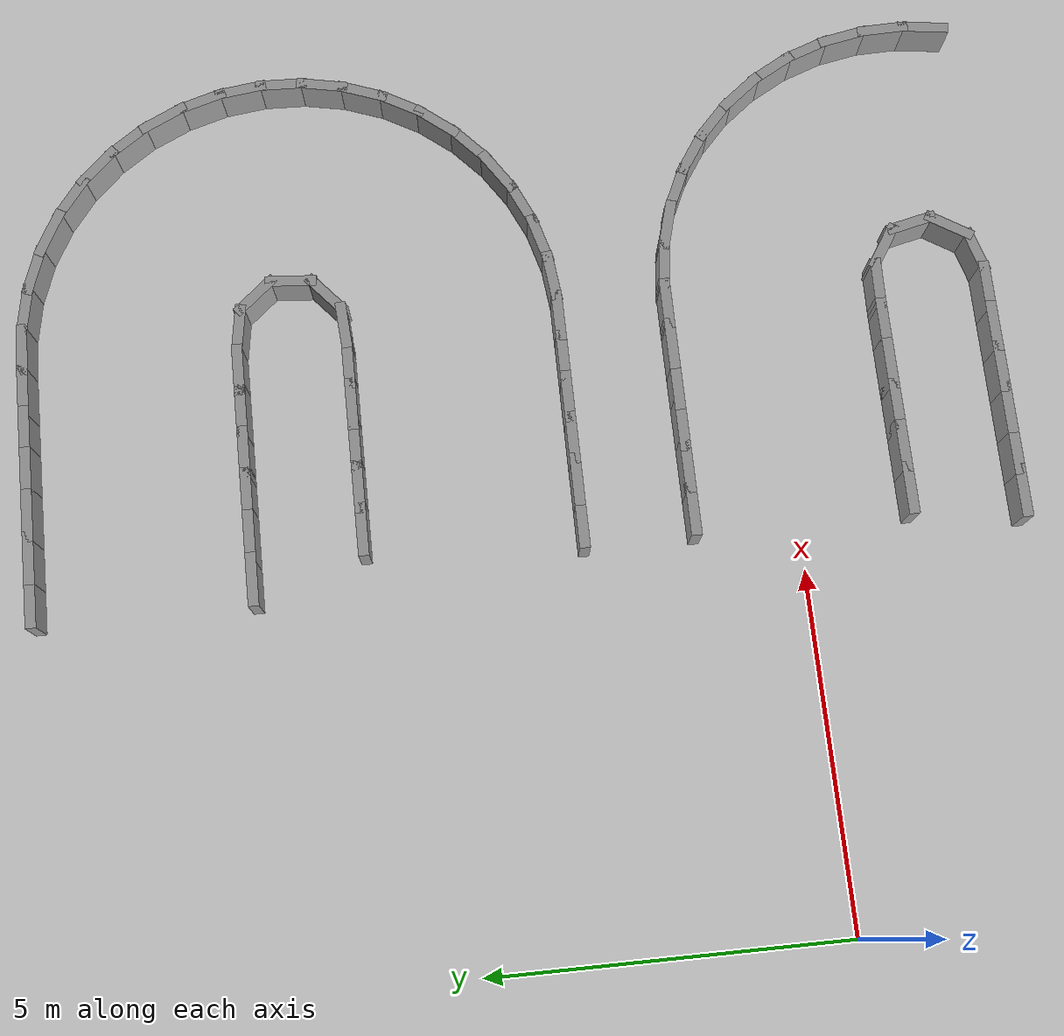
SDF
<sdf version="1.7">
 <world name="default">
  <model name="ground_plane">
   <static>1</static>
   <link name="link">
    <collision name="collision">
     <geometry><plane><normal>0 0 1</normal><size>100 100</size></plane></geometry>
     <surface><friction><ode><mu>100</mu><mu2>50</mu2></ode></friction></surface>
    </collision>
    <visual name="visual">
     <cast_shadows>0</cast_shadows>
     <geometry><plane><normal>0 0 1</normal><size>100 100</size></plane></geometry>
     <material>
      <script><uri>file://media/materials/scripts/gazebo.material</uri><name>Gazebo/Grey</name></script>
     </material>
    </visual>
   </link>
  </model>
  <model name="rand_serp_02">
   <link name="Wall_25">
    <collision name="Wall_25_Collision">
     <geometry><box><size>0.7500 0.1500 0.6000</size></box></geometry>
     <pose>0 0 0.3000 0 -0 0</pose>
    </collision>
    <visual name="Wall_25_Visual">
     <pose>0 0 0.3000 0 -0 0</pose>
     <geometry><box><size>0.7500 0.1500 0.6000</size></box></geometry>
     <material>
      <script><uri>file://media/materials/scripts/gazebo.material</uri><name>Gazebo/Grey</name></script>
      <ambient>1 1 1 1</ambient>
     </material>
    </visual>
    <pose>5.5341 10.6147 0 0 -0 0.00000</pose>
   </link>
   <link name="Wall_26">
    <collision name="Wall_26_Collision">
     <geometry><box><size>0.7500 0.1500 0.6000</size></box></geometry>
     <pose>0 0 0.3000 0 -0 0</pose>
    </collision>
    <visual name="Wall_26_Visual">
     <pose>0 0 0.3000 0 -0 0</pose>
     <geometry><box><size>0.7500 0.1500 0.6000</size></box></geometry>
     <material>
      <script><uri>file://media/materials/scripts/gazebo.material</uri><name>Gazebo/Grey</name></script>
      <ambient>1 1 1 1</ambient>
     </material>
    </visual>
    <pose>6.1341 10.6147 0 0 -0 0.00000</pose>
   </link>
   <link name="Wall_27">
    <collision name="Wall_27_Collision">
     <geometry><box><size>0.7500 0.1500 0.6000</size></box></geometry>
     <pose>0 0 0.3000 0 -0 0</pose>
    </collision>
    <visual name="Wall_27_Visual">
     <pose>0 0 0.3000 0 -0 0</pose>
     <geometry><box><size>0.7500 0.1500 0.6000</size></box></geometry>
     <material>
      <script><uri>file://media/materials/scripts/gazebo.material</uri><name>Gazebo/Grey</name></script>
      <ambient>1 1 1 1</ambient>
     </material>
    </visual>
    <pose>6.7341 10.6147 0 0 -0 0.00000</pose>
   </link>
   <link name="Wall_28">
    <collision name="Wall_28_Collision">
     <geometry><box><size>0.7500 0.1500 0.6000</size></box></geometry>
     <pose>0 0 0.3000 0 -0 0</pose>
    </collision>
    <visual name="Wall_28_Visual">
     <pose>0 0 0.3000 0 -0 0</pose>
     <geometry><box><size>0.7500 0.1500 0.6000</size></box></geometry>
     <material>
      <script><uri>file://media/materials/scripts/gazebo.material</uri><name>Gazebo/Grey</name></script>
      <ambient>1 1 1 1</ambient>
     </material>
    </visual>
    <pose>7.3341 10.6147 0 0 -0 0.00000</pose>
   </link>
   <link name="Wall_29">
    <collision name="Wall_29_Collision">
     <geometry><box><size>0.7500 0.1500 0.6000</size></box></geometry>
     <pose>0 0 0.3000 0 -0 0</pose>
    </collision>
    <visual name="Wall_29_Visual">
     <pose>0 0 0.3000 0 -0 0</pose>
     <geometry><box><size>0.7500 0.1500 0.6000</size></box></geometry>
     <material>
      <script><uri>file://media/materials/scripts/gazebo.material</uri><name>Gazebo/Grey</name></script>
      <ambient>1 1 1 1</ambient>
     </material>
    </visual>
    <pose>7.9341 10.6147 0 0 -0 0.00000</pose>
   </link>
   <link name="Wall_30">
    <collision name="Wall_30_Collision">
     <geometry><box><size>0.7500 0.1500 0.6000</size></box></geometry>
     <pose>0 0 0.3000 0 -0 0</pose>
    </collision>
    <visual name="Wall_30_Visual">
     <pose>0 0 0.3000 0 -0 0</pose>
     <geometry><box><size>0.7500 0.1500 0.6000</size></box></geometry>
     <material>
      <script><uri>file://media/materials/scripts/gazebo.material</uri><name>Gazebo/Grey</name></script>
      <ambient>1 1 1 1</ambient>
     </material>
    </visual>
    <pose>8.5341 10.6147 0 0 -0 0.00000</pose>
   </link>
   <link name="Wall_31">
    <collision name="Wall_31_Collision">
     <geometry><box><size>0.7497 0.1500 0.6000</size></box></geometry>
     <pose>0 0 0.3000 0 -0 0</pose>
    </collision>
    <visual name="Wall_31_Visual">
     <pose>0 0 0.3000 0 -0 0</pose>
     <geometry><box><size>0.7497 0.1500 0.6000</size></box></geometry>
     <material>
      <script><uri>file://media/materials/scripts/gazebo.material</uri><name>Gazebo/Grey</name></script>
      <ambient>1 1 1 1</ambient>
     </material>
    </visual>
    <pose>9.1338 10.6053 0 0 -0 -0.03110</pose>
   </link>
   <link name="Wall_32">
    <collision name="Wall_32_Collision">
     <geometry><box><size>0.7493 0.1500 0.6000</size></box></geometry>
     <pose>0 0 0.3000 0 -0 0</pose>
    </collision>
    <visual name="Wall_32_Visual">
     <pose>0 0 0.3000 0 -0 0</pose>
     <geometry><box><size>0.7493 0.1500 0.6000</size></box></geometry>
     <material>
      <script><uri>file://media/materials/scripts/gazebo.material</uri><name>Gazebo/Grey</name></script>
      <ambient>1 1 1 1</ambient>
     </material>
    </visual>
    <pose>9.7285 10.5434 0 0 -0 -0.17663</pose>
   </link>
   <link name="Wall_33">
    <collision name="Wall_33_Collision">
     <geometry><box><size>0.7493 0.1500 0.6000</size></box></geometry>
     <pose>0 0 0.3000 0 -0 0</pose>
    </collision>
    <visual name="Wall_33_Visual">
     <pose>0 0 0.3000 0 -0 0</pose>
     <geometry><box><size>0.7493 0.1500 0.6000</size></box></geometry>
     <material>
      <script><uri>file://media/materials/scripts/gazebo.material</uri><name>Gazebo/Grey</name></script>
      <ambient>1 1 1 1</ambient>
     </material>
    </visual>
    <pose>10.3064 10.3921 0 0 -0 -0.33521</pose>
   </link>
   <link name="Wall_34">
    <collision name="Wall_34_Collision">
     <geometry><box><size>0.7493 0.1500 0.6000</size></box></geometry>
     <pose>0 0 0.3000 0 -0 0</pose>
    </collision>
    <visual name="Wall_34_Visual">
     <pose>0 0 0.3000 0 -0 0</pose>
     <geometry><box><size>0.7493 0.1500 0.6000</size></box></geometry>
     <material>
      <script><uri>file://media/materials/scripts/gazebo.material</uri><name>Gazebo/Grey</name></script>
      <ambient>1 1 1 1</ambient>
     </material>
    </visual>
    <pose>10.8533 10.1515 0 0 -0 -0.49380</pose>
   </link>
   <link name="Wall_35">
    <collision name="Wall_35_Collision">
     <geometry><box><size>0.7493 0.1500 0.6000</size></box></geometry>
     <pose>0 0 0.3000 0 -0 0</pose>
    </collision>
    <visual name="Wall_35_Visual">
     <pose>0 0 0.3000 0 -0 0</pose>
     <geometry><box><size>0.7493 0.1500 0.6000</size></box></geometry>
     <material>
      <script><uri>file://media/materials/scripts/gazebo.material</uri><name>Gazebo/Grey</name></script>
      <ambient>1 1 1 1</ambient>
     </material>
    </visual>
    <pose>11.3552 9.8276 0 0 -0 -0.65239</pose>
   </link>
   <link name="Wall_36">
    <collision name="Wall_36_Collision">
     <geometry><box><size>0.7493 0.1500 0.6000</size></box></geometry>
     <pose>0 0 0.3000 0 -0 0</pose>
    </collision>
    <visual name="Wall_36_Visual">
     <pose>0 0 0.3000 0 -0 0</pose>
     <geometry><box><size>0.7493 0.1500 0.6000</size></box></geometry>
     <material>
      <script><uri>file://media/materials/scripts/gazebo.material</uri><name>Gazebo/Grey</name></script>
      <ambient>1 1 1 1</ambient>
     </material>
    </visual>
    <pose>11.7997 9.4284 0 0 -0 -0.81098</pose>
   </link>
   <link name="Wall_37">
    <collision name="Wall_37_Collision">
     <geometry><box><size>0.7493 0.1500 0.6000</size></box></geometry>
     <pose>0 0 0.3000 0 -0 0</pose>
    </collision>
    <visual name="Wall_37_Visual">
     <pose>0 0 0.3000 0 -0 0</pose>
     <geometry><box><size>0.7493 0.1500 0.6000</size></box></geometry>
     <material>
      <script><uri>file://media/materials/scripts/gazebo.material</uri><name>Gazebo/Grey</name></script>
      <ambient>1 1 1 1</ambient>
     </material>
    </visual>
    <pose>12.1756 8.9641 0 0 -0 -0.96957</pose>
   </link>
   <link name="Wall_38">
    <collision name="Wall_38_Collision">
     <geometry><box><size>0.7493 0.1500 0.6000</size></box></geometry>
     <pose>0 0 0.3000 0 -0 0</pose>
    </collision>
    <visual name="Wall_38_Visual">
     <pose>0 0 0.3000 0 -0 0</pose>
     <geometry><box><size>0.7493 0.1500 0.6000</size></box></geometry>
     <material>
      <script><uri>file://media/materials/scripts/gazebo.material</uri><name>Gazebo/Grey</name></script>
      <ambient>1 1 1 1</ambient>
     </material>
    </visual>
    <pose>12.4735 8.4462 0 0 -0 -1.12815</pose>
   </link>
   <link name="Wall_39">
    <collision name="Wall_39_Collision">
     <geometry><box><size>0.7493 0.1500 0.6000</size></box></geometry>
     <pose>0 0 0.3000 0 -0 0</pose>
    </collision>
    <visual name="Wall_39_Visual">
     <pose>0 0 0.3000 0 -0 0</pose>
     <geometry><box><size>0.7493 0.1500 0.6000</size></box></geometry>
     <material>
      <script><uri>file://media/materials/scripts/gazebo.material</uri><name>Gazebo/Grey</name></script>
      <ambient>1 1 1 1</ambient>
     </material>
    </visual>
    <pose>12.6858 7.8878 0 0 -0 -1.28674</pose>
   </link>
   <link name="Wall_40">
    <collision name="Wall_40_Collision">
     <geometry><box><size>0.7493 0.1500 0.6000</size></box></geometry>
     <pose>0 0 0.3000 0 -0 0</pose>
    </collision>
    <visual name="Wall_40_Visual">
     <pose>0 0 0.3000 0 -0 0</pose>
     <geometry><box><size>0.7493 0.1500 0.6000</size></box></geometry>
     <material>
      <script><uri>file://media/materials/scripts/gazebo.material</uri><name>Gazebo/Grey</name></script>
      <ambient>1 1 1 1</ambient>
     </material>
    </visual>
    <pose>12.8073 7.3029 0 0 -0 -1.44533</pose>
   </link>
   <link name="Wall_41">
    <collision name="Wall_41_Collision">
     <geometry><box><size>0.7493 0.1500 0.6000</size></box></geometry>
     <pose>0 0 0.3000 0 -0 0</pose>
    </collision>
    <visual name="Wall_41_Visual">
     <pose>0 0 0.3000 0 -0 0</pose>
     <geometry><box><size>0.7493 0.1500 0.6000</size></box></geometry>
     <material>
      <script><uri>file://media/materials/scripts/gazebo.material</uri><name>Gazebo/Grey</name></script>
      <ambient>1 1 1 1</ambient>
     </material>
    </visual>
    <pose>12.8348 6.7061 0 0 -0 -1.60392</pose>
   </link>
   <link name="Wall_42">
    <collision name="Wall_42_Collision">
     <geometry><box><size>0.7493 0.1500 0.6000</size></box></geometry>
     <pose>0 0 0.3000 0 -0 0</pose>
    </collision>
    <visual name="Wall_42_Visual">
     <pose>0 0 0.3000 0 -0 0</pose>
     <geometry><box><size>0.7493 0.1500 0.6000</size></box></geometry>
     <material>
      <script><uri>file://media/materials/scripts/gazebo.material</uri><name>Gazebo/Grey</name></script>
      <ambient>1 1 1 1</ambient>
     </material>
    </visual>
    <pose>12.7678 6.1124 0 0 -0 -1.76251</pose>
   </link>
   <link name="Wall_43">
    <collision name="Wall_43_Collision">
     <geometry><box><size>0.7493 0.1500 0.6000</size></box></geometry>
     <pose>0 0 0.3000 0 -0 0</pose>
    </collision>
    <visual name="Wall_43_Visual">
     <pose>0 0 0.3000 0 -0 0</pose>
     <geometry><box><size>0.7493 0.1500 0.6000</size></box></geometry>
     <material>
      <script><uri>file://media/materials/scripts/gazebo.material</uri><name>Gazebo/Grey</name></script>
      <ambient>1 1 1 1</ambient>
     </material>
    </visual>
    <pose>12.6079 5.5368 0 0 -0 -1.92110</pose>
   </link>
   <link name="Wall_44">
    <collision name="Wall_44_Collision">
     <geometry><box><size>0.7493 0.1500 0.6000</size></box></geometry>
     <pose>0 0 0.3000 0 -0 0</pose>
    </collision>
    <visual name="Wall_44_Visual">
     <pose>0 0 0.3000 0 -0 0</pose>
     <geometry><box><size>0.7493 0.1500 0.6000</size></box></geometry>
     <material>
      <script><uri>file://media/materials/scripts/gazebo.material</uri><name>Gazebo/Grey</name></script>
      <ambient>1 1 1 1</ambient>
     </material>
    </visual>
    <pose>12.3591 4.9937 0 0 -0 -2.07968</pose>
   </link>
   <link name="Wall_45">
    <collision name="Wall_45_Collision">
     <geometry><box><size>0.7493 0.1500 0.6000</size></box></geometry>
     <pose>0 0 0.3000 0 -0 0</pose>
    </collision>
    <visual name="Wall_45_Visual">
     <pose>0 0 0.3000 0 -0 0</pose>
     <geometry><box><size>0.7493 0.1500 0.6000</size></box></geometry>
     <material>
      <script><uri>file://media/materials/scripts/gazebo.material</uri><name>Gazebo/Grey</name></script>
      <ambient>1 1 1 1</ambient>
     </material>
    </visual>
    <pose>12.0276 4.4967 0 0 -0 -2.23827</pose>
   </link>
   <link name="Wall_46">
    <collision name="Wall_46_Collision">
     <geometry><box><size>0.7493 0.1500 0.6000</size></box></geometry>
     <pose>0 0 0.3000 0 -0 0</pose>
    </collision>
    <visual name="Wall_46_Visual">
     <pose>0 0 0.3000 0 -0 0</pose>
     <geometry><box><size>0.7493 0.1500 0.6000</size></box></geometry>
     <material>
      <script><uri>file://media/materials/scripts/gazebo.material</uri><name>Gazebo/Grey</name></script>
      <ambient>1 1 1 1</ambient>
     </material>
    </visual>
    <pose>11.6218 4.0582 0 0 -0 -2.39686</pose>
   </link>
   <link name="Wall_47">
    <collision name="Wall_47_Collision">
     <geometry><box><size>0.7493 0.1500 0.6000</size></box></geometry>
     <pose>0 0 0.3000 0 -0 0</pose>
    </collision>
    <visual name="Wall_47_Visual">
     <pose>0 0 0.3000 0 -0 0</pose>
     <geometry><box><size>0.7493 0.1500 0.6000</size></box></geometry>
     <material>
      <script><uri>file://media/materials/scripts/gazebo.material</uri><name>Gazebo/Grey</name></script>
      <ambient>1 1 1 1</ambient>
     </material>
    </visual>
    <pose>11.1518 3.6893 0 0 -0 -2.55545</pose>
   </link>
   <link name="Wall_48">
    <collision name="Wall_48_Collision">
     <geometry><box><size>0.7493 0.1500 0.6000</size></box></geometry>
     <pose>0 0 0.3000 0 -0 0</pose>
    </collision>
    <visual name="Wall_48_Visual">
     <pose>0 0 0.3000 0 -0 0</pose>
     <geometry><box><size>0.7493 0.1500 0.6000</size></box></geometry>
     <material>
      <script><uri>file://media/materials/scripts/gazebo.material</uri><name>Gazebo/Grey</name></script>
      <ambient>1 1 1 1</ambient>
     </material>
    </visual>
    <pose>10.6295 3.3993 0 0 -0 -2.71404</pose>
   </link>
   <link name="Wall_49">
    <collision name="Wall_49_Collision">
     <geometry><box><size>0.7493 0.1500 0.6000</size></box></geometry>
     <pose>0 0 0.3000 0 -0 0</pose>
    </collision>
    <visual name="Wall_49_Visual">
     <pose>0 0 0.3000 0 -0 0</pose>
     <geometry><box><size>0.7493 0.1500 0.6000</size></box></geometry>
     <material>
      <script><uri>file://media/materials/scripts/gazebo.material</uri><name>Gazebo/Grey</name></script>
      <ambient>1 1 1 1</ambient>
     </material>
    </visual>
    <pose>10.0679 3.1954 0 0 -0 -2.87262</pose>
   </link>
   <link name="Wall_50">
    <collision name="Wall_50_Collision">
     <geometry><box><size>0.7493 0.1500 0.6000</size></box></geometry>
     <pose>0 0 0.3000 0 -0 0</pose>
    </collision>
    <visual name="Wall_50_Visual">
     <pose>0 0 0.3000 0 -0 0</pose>
     <geometry><box><size>0.7493 0.1500 0.6000</size></box></geometry>
     <material>
      <script><uri>file://media/materials/scripts/gazebo.material</uri><name>Gazebo/Grey</name></script>
      <ambient>1 1 1 1</ambient>
     </material>
    </visual>
    <pose>9.4812 3.0828 0 0 -0 -3.03108</pose>
   </link>
   <link name="Wall_51">
    <collision name="Wall_51_Collision">
     <geometry><box><size>0.7500 0.1500 0.6000</size></box></geometry>
     <pose>0 0 0.3000 0 -0 0</pose>
    </collision>
    <visual name="Wall_51_Visual">
     <pose>0 0 0.3000 0 -0 0</pose>
     <geometry><box><size>0.7500 0.1500 0.6000</size></box></geometry>
     <material>
      <script><uri>file://media/materials/scripts/gazebo.material</uri><name>Gazebo/Grey</name></script>
      <ambient>1 1 1 1</ambient>
     </material>
    </visual>
    <pose>8.8833 3.0486 0 0 -0 -3.13784</pose>
   </link>
   <link name="Wall_52">
    <collision name="Wall_52_Collision">
     <geometry><box><size>0.7500 0.1500 0.6000</size></box></geometry>
     <pose>0 0 0.3000 0 -0 0</pose>
    </collision>
    <visual name="Wall_52_Visual">
     <pose>0 0 0.3000 0 -0 0</pose>
     <geometry><box><size>0.7500 0.1500 0.6000</size></box></geometry>
     <material>
      <script><uri>file://media/materials/scripts/gazebo.material</uri><name>Gazebo/Grey</name></script>
      <ambient>1 1 1 1</ambient>
     </material>
    </visual>
    <pose>8.2833 3.0475 0 0 -0 3.14159</pose>
   </link>
   <link name="Wall_53">
    <collision name="Wall_53_Collision">
     <geometry><box><size>0.7500 0.1500 0.6000</size></box></geometry>
     <pose>0 0 0.3000 0 -0 0</pose>
    </collision>
    <visual name="Wall_53_Visual">
     <pose>0 0 0.3000 0 -0 0</pose>
     <geometry><box><size>0.7500 0.1500 0.6000</size></box></geometry>
     <material>
      <script><uri>file://media/materials/scripts/gazebo.material</uri><name>Gazebo/Grey</name></script>
      <ambient>1 1 1 1</ambient>
     </material>
    </visual>
    <pose>7.6833 3.0475 0 0 -0 3.14159</pose>
   </link>
   <link name="Wall_54">
    <collision name="Wall_54_Collision">
     <geometry><box><size>0.7500 0.1500 0.6000</size></box></geometry>
     <pose>0 0 0.3000 0 -0 0</pose>
    </collision>
    <visual name="Wall_54_Visual">
     <pose>0 0 0.3000 0 -0 0</pose>
     <geometry><box><size>0.7500 0.1500 0.6000</size></box></geometry>
     <material>
      <script><uri>file://media/materials/scripts/gazebo.material</uri><name>Gazebo/Grey</name></script>
      <ambient>1 1 1 1</ambient>
     </material>
    </visual>
    <pose>7.0833 3.0475 0 0 -0 3.14159</pose>
   </link>
   <link name="Wall_55">
    <collision name="Wall_55_Collision">
     <geometry><box><size>0.7500 0.1500 0.6000</size></box></geometry>
     <pose>0 0 0.3000 0 -0 0</pose>
    </collision>
    <visual name="Wall_55_Visual">
     <pose>0 0 0.3000 0 -0 0</pose>
     <geometry><box><size>0.7500 0.1500 0.6000</size></box></geometry>
     <material>
      <script><uri>file://media/materials/scripts/gazebo.material</uri><name>Gazebo/Grey</name></script>
      <ambient>1 1 1 1</ambient>
     </material>
    </visual>
    <pose>6.4833 3.0475 0 0 -0 3.14159</pose>
   </link>
   <link name="Wall_56">
    <collision name="Wall_56_Collision">
     <geometry><box><size>0.7500 0.1500 0.6000</size></box></geometry>
     <pose>0 0 0.3000 0 -0 0</pose>
    </collision>
    <visual name="Wall_56_Visual">
     <pose>0 0 0.3000 0 -0 0</pose>
     <geometry><box><size>0.7500 0.1500 0.6000</size></box></geometry>
     <material>
      <script><uri>file://media/materials/scripts/gazebo.material</uri><name>Gazebo/Grey</name></script>
      <ambient>1 1 1 1</ambient>
     </material>
    </visual>
    <pose>5.8833 3.0475 0 0 -0 3.14159</pose>
   </link>
   <link name="Wall_110">
    <collision name="Wall_110_Collision">
     <geometry><box><size>0.7500 0.1500 0.6000</size></box></geometry>
     <pose>0 0 0.3000 0 -0 0</pose>
    </collision>
    <visual name="Wall_110_Visual">
     <pose>0 0 0.3000 0 -0 0</pose>
     <geometry><box><size>0.7500 0.1500 0.6000</size></box></geometry>
     <material>
      <script><uri>file://media/materials/scripts/gazebo.material</uri><name>Gazebo/Grey</name></script>
      <ambient>1 1 1 1</ambient>
     </material>
    </visual>
    <pose>5.9048 1.5066 0 0 -0 0.00000</pose>
   </link>
   <link name="Wall_111">
    <collision name="Wall_111_Collision">
     <geometry><box><size>0.7500 0.1500 0.6000</size></box></geometry>
     <pose>0 0 0.3000 0 -0 0</pose>
    </collision>
    <visual name="Wall_111_Visual">
     <pose>0 0 0.3000 0 -0 0</pose>
     <geometry><box><size>0.7500 0.1500 0.6000</size></box></geometry>
     <material>
      <script><uri>file://media/materials/scripts/gazebo.material</uri><name>Gazebo/Grey</name></script>
      <ambient>1 1 1 1</ambient>
     </material>
    </visual>
    <pose>6.5048 1.5066 0 0 -0 0.00000</pose>
   </link>
   <link name="Wall_112">
    <collision name="Wall_112_Collision">
     <geometry><box><size>0.7500 0.1500 0.6000</size></box></geometry>
     <pose>0 0 0.3000 0 -0 0</pose>
    </collision>
    <visual name="Wall_112_Visual">
     <pose>0 0 0.3000 0 -0 0</pose>
     <geometry><box><size>0.7500 0.1500 0.6000</size></box></geometry>
     <material>
      <script><uri>file://media/materials/scripts/gazebo.material</uri><name>Gazebo/Grey</name></script>
      <ambient>1 1 1 1</ambient>
     </material>
    </visual>
    <pose>7.1048 1.5066 0 0 -0 0.00000</pose>
   </link>
   <link name="Wall_113">
    <collision name="Wall_113_Collision">
     <geometry><box><size>0.7500 0.1500 0.6000</size></box></geometry>
     <pose>0 0 0.3000 0 -0 0</pose>
    </collision>
    <visual name="Wall_113_Visual">
     <pose>0 0 0.3000 0 -0 0</pose>
     <geometry><box><size>0.7500 0.1500 0.6000</size></box></geometry>
     <material>
      <script><uri>file://media/materials/scripts/gazebo.material</uri><name>Gazebo/Grey</name></script>
      <ambient>1 1 1 1</ambient>
     </material>
    </visual>
    <pose>7.7048 1.5066 0 0 -0 0.00000</pose>
   </link>
   <link name="Wall_114">
    <collision name="Wall_114_Collision">
     <geometry><box><size>0.7500 0.1500 0.6000</size></box></geometry>
     <pose>0 0 0.3000 0 -0 0</pose>
    </collision>
    <visual name="Wall_114_Visual">
     <pose>0 0 0.3000 0 -0 0</pose>
     <geometry><box><size>0.7500 0.1500 0.6000</size></box></geometry>
     <material>
      <script><uri>file://media/materials/scripts/gazebo.material</uri><name>Gazebo/Grey</name></script>
      <ambient>1 1 1 1</ambient>
     </material>
    </visual>
    <pose>8.3048 1.5066 0 0 -0 0.00000</pose>
   </link>
   <link name="Wall_115">
    <collision name="Wall_115_Collision">
     <geometry><box><size>0.7500 0.1500 0.6000</size></box></geometry>
     <pose>0 0 0.3000 0 -0 0</pose>
    </collision>
    <visual name="Wall_115_Visual">
     <pose>0 0 0.3000 0 -0 0</pose>
     <geometry><box><size>0.7500 0.1500 0.6000</size></box></geometry>
     <material>
      <script><uri>file://media/materials/scripts/gazebo.material</uri><name>Gazebo/Grey</name></script>
      <ambient>1 1 1 1</ambient>
     </material>
    </visual>
    <pose>8.9047 1.5052 0 0 -0 -0.00456</pose>
   </link>
   <link name="Wall_116">
    <collision name="Wall_116_Collision">
     <geometry><box><size>0.7494 0.1500 0.6000</size></box></geometry>
     <pose>0 0 0.3000 0 -0 0</pose>
    </collision>
    <visual name="Wall_116_Visual">
     <pose>0 0 0.3000 0 -0 0</pose>
     <geometry><box><size>0.7494 0.1500 0.6000</size></box></geometry>
     <material>
      <script><uri>file://media/materials/scripts/gazebo.material</uri><name>Gazebo/Grey</name></script>
      <ambient>1 1 1 1</ambient>
     </material>
    </visual>
    <pose>9.5024 1.4691 0 0 -0 -0.11610</pose>
   </link>
   <link name="Wall_117">
    <collision name="Wall_117_Collision">
     <geometry><box><size>0.7494 0.1500 0.6000</size></box></geometry>
     <pose>0 0 0.3000 0 -0 0</pose>
    </collision>
    <visual name="Wall_117_Visual">
     <pose>0 0 0.3000 0 -0 0</pose>
     <geometry><box><size>0.7494 0.1500 0.6000</size></box></geometry>
     <material>
      <script><uri>file://media/materials/scripts/gazebo.material</uri><name>Gazebo/Grey</name></script>
      <ambient>1 1 1 1</ambient>
     </material>
    </visual>
    <pose>10.0885 1.3531 0 0 -0 -0.27464</pose>
   </link>
   <link name="Wall_118">
    <collision name="Wall_118_Collision">
     <geometry><box><size>0.7494 0.1500 0.6000</size></box></geometry>
     <pose>0 0 0.3000 0 -0 0</pose>
    </collision>
    <visual name="Wall_118_Visual">
     <pose>0 0 0.3000 0 -0 0</pose>
     <geometry><box><size>0.7494 0.1500 0.6000</size></box></geometry>
     <material>
      <script><uri>file://media/materials/scripts/gazebo.material</uri><name>Gazebo/Grey</name></script>
      <ambient>1 1 1 1</ambient>
     </material>
    </visual>
    <pose>10.6490 1.1461 0 0 -0 -0.43323</pose>
   </link>
   <link name="Wall_119">
    <collision name="Wall_119_Collision">
     <geometry><box><size>0.7494 0.1500 0.6000</size></box></geometry>
     <pose>0 0 0.3000 0 -0 0</pose>
    </collision>
    <visual name="Wall_119_Visual">
     <pose>0 0 0.3000 0 -0 0</pose>
     <geometry><box><size>0.7494 0.1500 0.6000</size></box></geometry>
     <material>
      <script><uri>file://media/materials/scripts/gazebo.material</uri><name>Gazebo/Grey</name></script>
      <ambient>1 1 1 1</ambient>
     </material>
    </visual>
    <pose>11.1697 0.8531 0 0 -0 -0.59182</pose>
   </link>
   <link name="Wall_120">
    <collision name="Wall_120_Collision">
     <geometry><box><size>0.7494 0.1500 0.6000</size></box></geometry>
     <pose>0 0 0.3000 0 -0 0</pose>
    </collision>
    <visual name="Wall_120_Visual">
     <pose>0 0 0.3000 0 -0 0</pose>
     <geometry><box><size>0.7494 0.1500 0.6000</size></box></geometry>
     <material>
      <script><uri>file://media/materials/scripts/gazebo.material</uri><name>Gazebo/Grey</name></script>
      <ambient>1 1 1 1</ambient>
     </material>
    </visual>
    <pose>11.6376 0.4815 0 0 -0 -0.75041</pose>
   </link>
   <link name="Wall_121">
    <collision name="Wall_121_Collision">
     <geometry><box><size>0.7494 0.1500 0.6000</size></box></geometry>
     <pose>0 0 0.3000 0 -0 0</pose>
    </collision>
    <visual name="Wall_121_Visual">
     <pose>0 0 0.3000 0 -0 0</pose>
     <geometry><box><size>0.7494 0.1500 0.6000</size></box></geometry>
     <material>
      <script><uri>file://media/materials/scripts/gazebo.material</uri><name>Gazebo/Grey</name></script>
      <ambient>1 1 1 1</ambient>
     </material>
    </visual>
    <pose>12.0409 0.0407 0 0 -0 -0.90900</pose>
   </link>
   <link name="Wall_122">
    <collision name="Wall_122_Collision">
     <geometry><box><size>0.7493 0.1500 0.6000</size></box></geometry>
     <pose>0 0 0.3000 0 -0 0</pose>
    </collision>
    <visual name="Wall_122_Visual">
     <pose>0 0 0.3000 0 -0 0</pose>
     <geometry><box><size>0.7493 0.1500 0.6000</size></box></geometry>
     <material>
      <script><uri>file://media/materials/scripts/gazebo.material</uri><name>Gazebo/Grey</name></script>
      <ambient>1 1 1 1</ambient>
     </material>
    </visual>
    <pose>12.3696 -0.4582 0 0 -0 -1.06758</pose>
   </link>
   <link name="Wall_123">
    <collision name="Wall_123_Collision">
     <geometry><box><size>0.7493 0.1500 0.6000</size></box></geometry>
     <pose>0 0 0.3000 0 -0 0</pose>
    </collision>
    <visual name="Wall_123_Visual">
     <pose>0 0 0.3000 0 -0 0</pose>
     <geometry><box><size>0.7493 0.1500 0.6000</size></box></geometry>
     <material>
      <script><uri>file://media/materials/scripts/gazebo.material</uri><name>Gazebo/Grey</name></script>
      <ambient>1 1 1 1</ambient>
     </material>
    </visual>
    <pose>12.6154 -1.0028 0 0 -0 -1.22617</pose>
   </link>
   <link name="Wall_124">
    <collision name="Wall_124_Collision">
     <geometry><box><size>0.7493 0.1500 0.6000</size></box></geometry>
     <pose>0 0 0.3000 0 -0 0</pose>
    </collision>
    <visual name="Wall_124_Visual">
     <pose>0 0 0.3000 0 -0 0</pose>
     <geometry><box><size>0.7493 0.1500 0.6000</size></box></geometry>
     <material>
      <script><uri>file://media/materials/scripts/gazebo.material</uri><name>Gazebo/Grey</name></script>
      <ambient>1 1 1 1</ambient>
     </material>
    </visual>
    <pose>12.7720 -1.5793 0 0 -0 -1.38476</pose>
   </link>
   <link name="Wall_125">
    <collision name="Wall_125_Collision">
     <geometry><box><size>0.7493 0.1500 0.6000</size></box></geometry>
     <pose>0 0 0.3000 0 -0 0</pose>
    </collision>
    <visual name="Wall_125_Visual">
     <pose>0 0 0.3000 0 -0 0</pose>
     <geometry><box><size>0.7493 0.1500 0.6000</size></box></geometry>
     <material>
      <script><uri>file://media/materials/scripts/gazebo.material</uri><name>Gazebo/Grey</name></script>
      <ambient>1 1 1 1</ambient>
     </material>
    </visual>
    <pose>12.8357 -2.1734 0 0 -0 -1.54335</pose>
   </link>
   <link name="Wall_126">
    <collision name="Wall_126_Collision">
     <geometry><box><size>0.7493 0.1500 0.6000</size></box></geometry>
     <pose>0 0 0.3000 0 -0 0</pose>
    </collision>
    <visual name="Wall_126_Visual">
     <pose>0 0 0.3000 0 -0 0</pose>
     <geometry><box><size>0.7493 0.1500 0.6000</size></box></geometry>
     <material>
      <script><uri>file://media/materials/scripts/gazebo.material</uri><name>Gazebo/Grey</name></script>
      <ambient>1 1 1 1</ambient>
     </material>
    </visual>
    <pose>12.8047 -2.7700 0 0 -0 -1.70194</pose>
   </link>
   <link name="Wall_227">
    <collision name="Wall_227_Collision">
     <geometry><box><size>0.7500 0.1500 0.6000</size></box></geometry>
     <pose>0 0 0.3000 0 -0 0</pose>
    </collision>
    <visual name="Wall_227_Visual">
     <pose>0 0 0.3000 0 -0 0</pose>
     <geometry><box><size>0.7500 0.1500 0.6000</size></box></geometry>
     <material>
      <script><uri>file://media/materials/scripts/gazebo.material</uri><name>Gazebo/Grey</name></script>
      <ambient>1 1 1 1</ambient>
     </material>
    </visual>
    <pose>5.5341 7.6015 0 0 -0 0.00000</pose>
   </link>
   <link name="Wall_228">
    <collision name="Wall_228_Collision">
     <geometry><box><size>0.7500 0.1500 0.6000</size></box></geometry>
     <pose>0 0 0.3000 0 -0 0</pose>
    </collision>
    <visual name="Wall_228_Visual">
     <pose>0 0 0.3000 0 -0 0</pose>
     <geometry><box><size>0.7500 0.1500 0.6000</size></box></geometry>
     <material>
      <script><uri>file://media/materials/scripts/gazebo.material</uri><name>Gazebo/Grey</name></script>
      <ambient>1 1 1 1</ambient>
     </material>
    </visual>
    <pose>6.1341 7.6015 0 0 -0 0.00000</pose>
   </link>
   <link name="Wall_229">
    <collision name="Wall_229_Collision">
     <geometry><box><size>0.7500 0.1500 0.6000</size></box></geometry>
     <pose>0 0 0.3000 0 -0 0</pose>
    </collision>
    <visual name="Wall_229_Visual">
     <pose>0 0 0.3000 0 -0 0</pose>
     <geometry><box><size>0.7500 0.1500 0.6000</size></box></geometry>
     <material>
      <script><uri>file://media/materials/scripts/gazebo.material</uri><name>Gazebo/Grey</name></script>
      <ambient>1 1 1 1</ambient>
     </material>
    </visual>
    <pose>6.7341 7.6015 0 0 -0 0.00000</pose>
   </link>
   <link name="Wall_230">
    <collision name="Wall_230_Collision">
     <geometry><box><size>0.7500 0.1500 0.6000</size></box></geometry>
     <pose>0 0 0.3000 0 -0 0</pose>
    </collision>
    <visual name="Wall_230_Visual">
     <pose>0 0 0.3000 0 -0 0</pose>
     <geometry><box><size>0.7500 0.1500 0.6000</size></box></geometry>
     <material>
      <script><uri>file://media/materials/scripts/gazebo.material</uri><name>Gazebo/Grey</name></script>
      <ambient>1 1 1 1</ambient>
     </material>
    </visual>
    <pose>7.3341 7.6015 0 0 -0 0.00000</pose>
   </link>
   <link name="Wall_231">
    <collision name="Wall_231_Collision">
     <geometry><box><size>0.7500 0.1500 0.6000</size></box></geometry>
     <pose>0 0 0.3000 0 -0 0</pose>
    </collision>
    <visual name="Wall_231_Visual">
     <pose>0 0 0.3000 0 -0 0</pose>
     <geometry><box><size>0.7500 0.1500 0.6000</size></box></geometry>
     <material>
      <script><uri>file://media/materials/scripts/gazebo.material</uri><name>Gazebo/Grey</name></script>
      <ambient>1 1 1 1</ambient>
     </material>
    </visual>
    <pose>7.9341 7.6015 0 0 -0 0.00000</pose>
   </link>
   <link name="Wall_232">
    <collision name="Wall_232_Collision">
     <geometry><box><size>0.7500 0.1500 0.6000</size></box></geometry>
     <pose>0 0 0.3000 0 -0 0</pose>
    </collision>
    <visual name="Wall_232_Visual">
     <pose>0 0 0.3000 0 -0 0</pose>
     <geometry><box><size>0.7500 0.1500 0.6000</size></box></geometry>
     <material>
      <script><uri>file://media/materials/scripts/gazebo.material</uri><name>Gazebo/Grey</name></script>
      <ambient>1 1 1 1</ambient>
     </material>
    </visual>
    <pose>8.5341 7.6015 0 0 -0 0.00000</pose>
   </link>
   <link name="Wall_233">
    <collision name="Wall_233_Collision">
     <geometry><box><size>0.7425 0.1500 0.6000</size></box></geometry>
     <pose>0 0 0.3000 0 -0 0</pose>
    </collision>
    <visual name="Wall_233_Visual">
     <pose>0 0 0.3000 0 -0 0</pose>
     <geometry><box><size>0.7425 0.1500 0.6000</size></box></geometry>
     <material>
      <script><uri>file://media/materials/scripts/gazebo.material</uri><name>Gazebo/Grey</name></script>
      <ambient>1 1 1 1</ambient>
     </material>
    </visual>
    <pose>9.1272 7.5583 0 0 -0 -0.14630</pose>
   </link>
   <link name="Wall_234">
    <collision name="Wall_234_Collision">
     <geometry><box><size>0.7349 0.1500 0.6000</size></box></geometry>
     <pose>0 0 0.3000 0 -0 0</pose>
    </collision>
    <visual name="Wall_234_Visual">
     <pose>0 0 0.3000 0 -0 0</pose>
     <geometry><box><size>0.7349 0.1500 0.6000</size></box></geometry>
     <material>
      <script><uri>file://media/materials/scripts/gazebo.material</uri><name>Gazebo/Grey</name></script>
      <ambient>1 1 1 1</ambient>
     </material>
    </visual>
    <pose>9.6094 7.2920 0 0 -0 -0.86764</pose>
   </link>
   <link name="Wall_235">
    <collision name="Wall_235_Collision">
     <geometry><box><size>0.7349 0.1500 0.6000</size></box></geometry>
     <pose>0 0 0.3000 0 -0 0</pose>
    </collision>
    <visual name="Wall_235_Visual">
     <pose>0 0 0.3000 0 -0 0</pose>
     <geometry><box><size>0.7349 0.1500 0.6000</size></box></geometry>
     <material>
      <script><uri>file://media/materials/scripts/gazebo.material</uri><name>Gazebo/Grey</name></script>
      <ambient>1 1 1 1</ambient>
     </material>
    </visual>
    <pose>9.7765 6.7773 0 0 -0 -1.64618</pose>
   </link>
   <link name="Wall_236">
    <collision name="Wall_236_Collision">
     <geometry><box><size>0.7349 0.1500 0.6000</size></box></geometry>
     <pose>0 0 0.3000 0 -0 0</pose>
    </collision>
    <visual name="Wall_236_Visual">
     <pose>0 0 0.3000 0 -0 0</pose>
     <geometry><box><size>0.7349 0.1500 0.6000</size></box></geometry>
     <material>
      <script><uri>file://media/materials/scripts/gazebo.material</uri><name>Gazebo/Grey</name></script>
      <ambient>1 1 1 1</ambient>
     </material>
    </visual>
    <pose>9.5339 6.2936 0 0 -0 -2.42510</pose>
   </link>
   <link name="Wall_237">
    <collision name="Wall_237_Collision">
     <geometry><box><size>0.6872 0.1500 0.6000</size></box></geometry>
     <pose>0 0 0.3000 0 -0 0</pose>
    </collision>
    <visual name="Wall_237_Visual">
     <pose>0 0 0.3000 0 -0 0</pose>
     <geometry><box><size>0.6872 0.1500 0.6000</size></box></geometry>
     <material>
      <script><uri>file://media/materials/scripts/gazebo.material</uri><name>Gazebo/Grey</name></script>
      <ambient>1 1 1 1</ambient>
     </material>
    </visual>
    <pose>9.0456 6.0811 0 0 -0 -3.06528</pose>
   </link>
   <link name="Wall_238">
    <collision name="Wall_238_Collision">
     <geometry><box><size>0.7500 0.1500 0.6000</size></box></geometry>
     <pose>0 0 0.3000 0 -0 0</pose>
    </collision>
    <visual name="Wall_238_Visual">
     <pose>0 0 0.3000 0 -0 0</pose>
     <geometry><box><size>0.7500 0.1500 0.6000</size></box></geometry>
     <material>
      <script><uri>file://media/materials/scripts/gazebo.material</uri><name>Gazebo/Grey</name></script>
      <ambient>1 1 1 1</ambient>
     </material>
    </visual>
    <pose>8.4778 6.0606 0 0 -0 3.14159</pose>
   </link>
   <link name="Wall_239">
    <collision name="Wall_239_Collision">
     <geometry><box><size>0.7500 0.1500 0.6000</size></box></geometry>
     <pose>0 0 0.3000 0 -0 0</pose>
    </collision>
    <visual name="Wall_239_Visual">
     <pose>0 0 0.3000 0 -0 0</pose>
     <geometry><box><size>0.7500 0.1500 0.6000</size></box></geometry>
     <material>
      <script><uri>file://media/materials/scripts/gazebo.material</uri><name>Gazebo/Grey</name></script>
      <ambient>1 1 1 1</ambient>
     </material>
    </visual>
    <pose>7.8778 6.0606 0 0 -0 3.14159</pose>
   </link>
   <link name="Wall_240">
    <collision name="Wall_240_Collision">
     <geometry><box><size>0.7500 0.1500 0.6000</size></box></geometry>
     <pose>0 0 0.3000 0 -0 0</pose>
    </collision>
    <visual name="Wall_240_Visual">
     <pose>0 0 0.3000 0 -0 0</pose>
     <geometry><box><size>0.7500 0.1500 0.6000</size></box></geometry>
     <material>
      <script><uri>file://media/materials/scripts/gazebo.material</uri><name>Gazebo/Grey</name></script>
      <ambient>1 1 1 1</ambient>
     </material>
    </visual>
    <pose>7.2778 6.0606 0 0 -0 3.14159</pose>
   </link>
   <link name="Wall_241">
    <collision name="Wall_241_Collision">
     <geometry><box><size>0.7500 0.1500 0.6000</size></box></geometry>
     <pose>0 0 0.3000 0 -0 0</pose>
    </collision>
    <visual name="Wall_241_Visual">
     <pose>0 0 0.3000 0 -0 0</pose>
     <geometry><box><size>0.7500 0.1500 0.6000</size></box></geometry>
     <material>
      <script><uri>file://media/materials/scripts/gazebo.material</uri><name>Gazebo/Grey</name></script>
      <ambient>1 1 1 1</ambient>
     </material>
    </visual>
    <pose>6.6778 6.0606 0 0 -0 3.14159</pose>
   </link>
   <link name="Wall_242">
    <collision name="Wall_242_Collision">
     <geometry><box><size>0.7500 0.1500 0.6000</size></box></geometry>
     <pose>0 0 0.3000 0 -0 0</pose>
    </collision>
    <visual name="Wall_242_Visual">
     <pose>0 0 0.3000 0 -0 0</pose>
     <geometry><box><size>0.7500 0.1500 0.6000</size></box></geometry>
     <material>
      <script><uri>file://media/materials/scripts/gazebo.material</uri><name>Gazebo/Grey</name></script>
      <ambient>1 1 1 1</ambient>
     </material>
    </visual>
    <pose>6.0778 6.0606 0 0 -0 3.14159</pose>
   </link>
   <link name="Wall_312">
    <collision name="Wall_312_Collision">
     <geometry><box><size>0.7500 0.1500 0.6000</size></box></geometry>
     <pose>0 0 0.3000 0 -0 0</pose>
    </collision>
    <visual name="Wall_312_Visual">
     <pose>0 0 0.3000 0 -0 0</pose>
     <geometry><box><size>0.7500 0.1500 0.6000</size></box></geometry>
     <material>
      <script><uri>file://media/materials/scripts/gazebo.material</uri><name>Gazebo/Grey</name></script>
      <ambient>1 1 1 1</ambient>
     </material>
    </visual>
    <pose>5.9048 -1.5066 0 0 -0 0.00000</pose>
   </link>
   <link name="Wall_313">
    <collision name="Wall_313_Collision">
     <geometry><box><size>0.7500 0.1500 0.6000</size></box></geometry>
     <pose>0 0 0.3000 0 -0 0</pose>
    </collision>
    <visual name="Wall_313_Visual">
     <pose>0 0 0.3000 0 -0 0</pose>
     <geometry><box><size>0.7500 0.1500 0.6000</size></box></geometry>
     <material>
      <script><uri>file://media/materials/scripts/gazebo.material</uri><name>Gazebo/Grey</name></script>
      <ambient>1 1 1 1</ambient>
     </material>
    </visual>
    <pose>6.5048 -1.5066 0 0 -0 0.00000</pose>
   </link>
   <link name="Wall_314">
    <collision name="Wall_314_Collision">
     <geometry><box><size>0.7500 0.1500 0.6000</size></box></geometry>
     <pose>0 0 0.3000 0 -0 0</pose>
    </collision>
    <visual name="Wall_314_Visual">
     <pose>0 0 0.3000 0 -0 0</pose>
     <geometry><box><size>0.7500 0.1500 0.6000</size></box></geometry>
     <material>
      <script><uri>file://media/materials/scripts/gazebo.material</uri><name>Gazebo/Grey</name></script>
      <ambient>1 1 1 1</ambient>
     </material>
    </visual>
    <pose>7.1048 -1.5066 0 0 -0 0.00000</pose>
   </link>
   <link name="Wall_315">
    <collision name="Wall_315_Collision">
     <geometry><box><size>0.7500 0.1500 0.6000</size></box></geometry>
     <pose>0 0 0.3000 0 -0 0</pose>
    </collision>
    <visual name="Wall_315_Visual">
     <pose>0 0 0.3000 0 -0 0</pose>
     <geometry><box><size>0.7500 0.1500 0.6000</size></box></geometry>
     <material>
      <script><uri>file://media/materials/scripts/gazebo.material</uri><name>Gazebo/Grey</name></script>
      <ambient>1 1 1 1</ambient>
     </material>
    </visual>
    <pose>7.7048 -1.5066 0 0 -0 0.00000</pose>
   </link>
   <link name="Wall_316">
    <collision name="Wall_316_Collision">
     <geometry><box><size>0.7500 0.1500 0.6000</size></box></geometry>
     <pose>0 0 0.3000 0 -0 0</pose>
    </collision>
    <visual name="Wall_316_Visual">
     <pose>0 0 0.3000 0 -0 0</pose>
     <geometry><box><size>0.7500 0.1500 0.6000</size></box></geometry>
     <material>
      <script><uri>file://media/materials/scripts/gazebo.material</uri><name>Gazebo/Grey</name></script>
      <ambient>1 1 1 1</ambient>
     </material>
    </visual>
    <pose>8.3048 -1.5066 0 0 -0 0.00000</pose>
   </link>
   <link name="Wall_317">
    <collision name="Wall_317_Collision">
     <geometry><box><size>0.7494 0.1500 0.6000</size></box></geometry>
     <pose>0 0 0.3000 0 -0 0</pose>
    </collision>
    <visual name="Wall_317_Visual">
     <pose>0 0 0.3000 0 -0 0</pose>
     <geometry><box><size>0.7494 0.1500 0.6000</size></box></geometry>
     <material>
      <script><uri>file://media/materials/scripts/gazebo.material</uri><name>Gazebo/Grey</name></script>
      <ambient>1 1 1 1</ambient>
     </material>
    </visual>
    <pose>8.9044 -1.5129 0 0 -0 -0.02108</pose>
   </link>
   <link name="Wall_318">
    <collision name="Wall_318_Collision">
     <geometry><box><size>0.7349 0.1500 0.6000</size></box></geometry>
     <pose>0 0 0.3000 0 -0 0</pose>
    </collision>
    <visual name="Wall_318_Visual">
     <pose>0 0 0.3000 0 -0 0</pose>
     <geometry><box><size>0.7349 0.1500 0.6000</size></box></geometry>
     <material>
      <script><uri>file://media/materials/scripts/gazebo.material</uri><name>Gazebo/Grey</name></script>
      <ambient>1 1 1 1</ambient>
     </material>
    </visual>
    <pose>9.4503 -1.6769 0 0 -0 -0.56955</pose>
   </link>
   <link name="Wall_319">
    <collision name="Wall_319_Collision">
     <geometry><box><size>0.7349 0.1500 0.6000</size></box></geometry>
     <pose>0 0 0.3000 0 -0 0</pose>
    </collision>
    <visual name="Wall_319_Visual">
     <pose>0 0 0.3000 0 -0 0</pose>
     <geometry><box><size>0.7349 0.1500 0.6000</size></box></geometry>
     <material>
      <script><uri>file://media/materials/scripts/gazebo.material</uri><name>Gazebo/Grey</name></script>
      <ambient>1 1 1 1</ambient>
     </material>
    </visual>
    <pose>9.7610 -2.1199 0 0 -0 -1.34861</pose>
   </link>
   <link name="Wall_320">
    <collision name="Wall_320_Collision">
     <geometry><box><size>0.7349 0.1500 0.6000</size></box></geometry>
     <pose>0 0 0.3000 0 -0 0</pose>
    </collision>
    <visual name="Wall_320_Visual">
     <pose>0 0 0.3000 0 -0 0</pose>
     <geometry><box><size>0.7349 0.1500 0.6000</size></box></geometry>
     <material>
      <script><uri>file://media/materials/scripts/gazebo.material</uri><name>Gazebo/Grey</name></script>
      <ambient>1 1 1 1</ambient>
     </material>
    </visual>
    <pose>9.6710 -2.6535 0 0 -0 -2.12733</pose>
   </link>
   <link name="Wall_321">
    <collision name="Wall_321_Collision">
     <geometry><box><size>0.6798 0.1500 0.6000</size></box></geometry>
     <pose>0 0 0.3000 0 -0 0</pose>
    </collision>
    <visual name="Wall_321_Visual">
     <pose>0 0 0.3000 0 -0 0</pose>
     <geometry><box><size>0.6798 0.1500 0.6000</size></box></geometry>
     <material>
      <script><uri>file://media/materials/scripts/gazebo.material</uri><name>Gazebo/Grey</name></script>
      <ambient>1 1 1 1</ambient>
     </material>
    </visual>
    <pose>9.2618 -2.9746 0 0 -0 -2.86302</pose>
   </link>
   <link name="Wall_322">
    <collision name="Wall_322_Collision">
     <geometry><box><size>0.7500 0.1500 0.6000</size></box></geometry>
     <pose>0 0 0.3000 0 -0 0</pose>
    </collision>
    <visual name="Wall_322_Visual">
     <pose>0 0 0.3000 0 -0 0</pose>
     <geometry><box><size>0.7500 0.1500 0.6000</size></box></geometry>
     <material>
      <script><uri>file://media/materials/scripts/gazebo.material</uri><name>Gazebo/Grey</name></script>
      <ambient>1 1 1 1</ambient>
     </material>
    </visual>
    <pose>8.7072 -3.0475 0 0 -0 3.14159</pose>
   </link>
   <link name="Wall_323">
    <collision name="Wall_323_Collision">
     <geometry><box><size>0.7500 0.1500 0.6000</size></box></geometry>
     <pose>0 0 0.3000 0 -0 0</pose>
    </collision>
    <visual name="Wall_323_Visual">
     <pose>0 0 0.3000 0 -0 0</pose>
     <geometry><box><size>0.7500 0.1500 0.6000</size></box></geometry>
     <material>
      <script><uri>file://media/materials/scripts/gazebo.material</uri><name>Gazebo/Grey</name></script>
      <ambient>1 1 1 1</ambient>
     </material>
    </visual>
    <pose>8.1072 -3.0475 0 0 -0 3.14159</pose>
   </link>
   <link name="Wall_324">
    <collision name="Wall_324_Collision">
     <geometry><box><size>0.7500 0.1500 0.6000</size></box></geometry>
     <pose>0 0 0.3000 0 -0 0</pose>
    </collision>
    <visual name="Wall_324_Visual">
     <pose>0 0 0.3000 0 -0 0</pose>
     <geometry><box><size>0.7500 0.1500 0.6000</size></box></geometry>
     <material>
      <script><uri>file://media/materials/scripts/gazebo.material</uri><name>Gazebo/Grey</name></script>
      <ambient>1 1 1 1</ambient>
     </material>
    </visual>
    <pose>7.5072 -3.0475 0 0 -0 3.14159</pose>
   </link>
   <link name="Wall_325">
    <collision name="Wall_325_Collision">
     <geometry><box><size>0.7500 0.1500 0.6000</size></box></geometry>
     <pose>0 0 0.3000 0 -0 0</pose>
    </collision>
    <visual name="Wall_325_Visual">
     <pose>0 0 0.3000 0 -0 0</pose>
     <geometry><box><size>0.7500 0.1500 0.6000</size></box></geometry>
     <material>
      <script><uri>file://media/materials/scripts/gazebo.material</uri><name>Gazebo/Grey</name></script>
      <ambient>1 1 1 1</ambient>
     </material>
    </visual>
    <pose>6.9072 -3.0475 0 0 -0 3.14159</pose>
   </link>
   <link name="Wall_326">
    <collision name="Wall_326_Collision">
     <geometry><box><size>0.7500 0.1500 0.6000</size></box></geometry>
     <pose>0 0 0.3000 0 -0 0</pose>
    </collision>
    <visual name="Wall_326_Visual">
     <pose>0 0 0.3000 0 -0 0</pose>
     <geometry><box><size>0.7500 0.1500 0.6000</size></box></geometry>
     <material>
      <script><uri>file://media/materials/scripts/gazebo.material</uri><name>Gazebo/Grey</name></script>
      <ambient>1 1 1 1</ambient>
     </material>
    </visual>
    <pose>6.3072 -3.0475 0 0 -0 3.14159</pose>
   </link>
   <link name="Wall_327">
    <collision name="Wall_327_Collision">
     <geometry><box><size>0.7500 0.1500 0.6000</size></box></geometry>
     <pose>0 0 0.3000 0 -0 0</pose>
    </collision>
    <visual name="Wall_327_Visual">
     <pose>0 0 0.3000 0 -0 0</pose>
     <geometry><box><size>0.7500 0.1500 0.6000</size></box></geometry>
     <material>
      <script><uri>file://media/materials/scripts/gazebo.material</uri><name>Gazebo/Grey</name></script>
      <ambient>1 1 1 1</ambient>
     </material>
    </visual>
    <pose>5.7072 -3.0475 0 0 -0 3.14159</pose>
   </link>
   <static>1</static>
  </model>
 </world>
</sdf>
